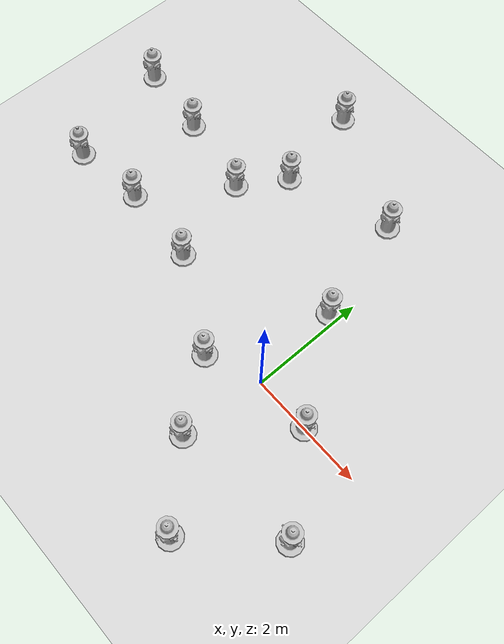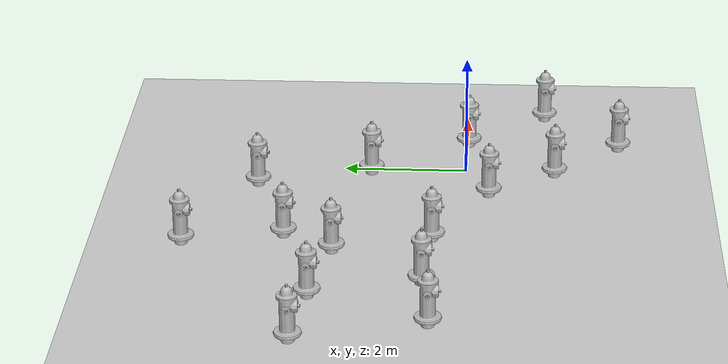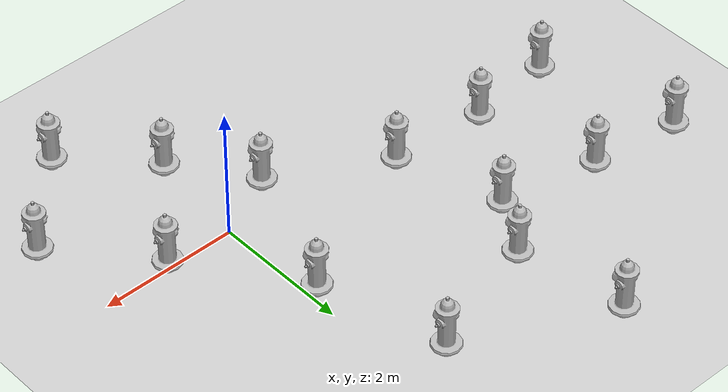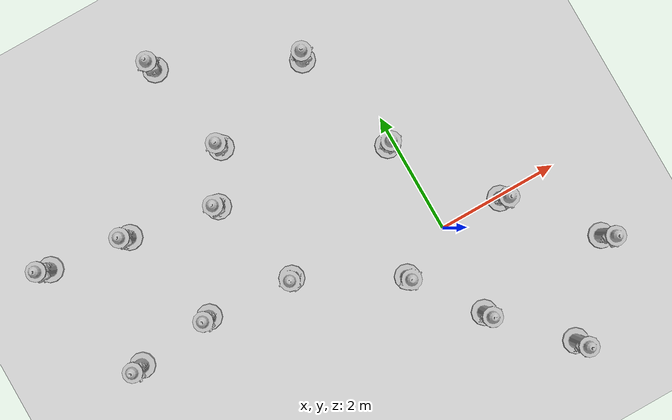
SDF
<sdf version="1.7">
 <world name="default">
  <light name="sun" type="directional">
   <pose>0 0 10 0 -0 0</pose>
   <diffuse>0.8 0.8 0.8 1</diffuse>
   <specular>0.2 0.2 0.2 1</specular>
   <attenuation>
    <range>1000</range>
    <constant>0.9</constant>
    <linear>0.01</linear>
    <quadratic>0.001</quadratic>
   </attenuation>
   <direction>-0.5 0.1 -0.9</direction>
   <spot><inner_angle>0</inner_angle><outer_angle>0</outer_angle><falloff>0</falloff></spot>
  </light>
  <model name="ground_plane">
   <static>1</static>
   <link name="link">
    <collision name="collision">
     <geometry><plane><normal>0 0 1</normal><size>100 100</size></plane></geometry>
     <surface>
      <contact><collide_bitmask>65535</collide_bitmask></contact>
      <friction><ode><mu>100</mu><mu2>50</mu2></ode></friction>
     </surface>
    </collision>
    <visual name="visual">
     <cast_shadows>0</cast_shadows>
     <geometry><plane><normal>0 0 1</normal><size>100 100</size></plane></geometry>
     <material>
      <script><uri>file://media/materials/scripts/gazebo.material</uri><name>Gazebo/Grey</name></script>
     </material>
    </visual>
   </link>
  </model>
  <gravity>0 0 -9.8</gravity>
  <magnetic_field>6e-06 2.3e-05 -4.2e-05</magnetic_field>
  <atmosphere type="adiabatic"/>
  <physics type="ode">
   <max_step_size>0.001</max_step_size>
   <real_time_factor>1</real_time_factor>
   <real_time_update_rate>1000</real_time_update_rate>
  </physics>
  <scene><ambient>0.4 0.4 0.4 1</ambient><background>0.7 0.7 0.7 1</background><shadows>1</shadows></scene>
  <audio><device>default</device></audio>
  <spherical_coordinates>
   <surface_model>EARTH_WGS84</surface_model>
   <latitude_deg>0</latitude_deg>
   <longitude_deg>0</longitude_deg>
   <elevation>0</elevation>
   <heading_deg>0</heading_deg>
  </spherical_coordinates>
  <model name="fire_hydrant">
   <static>1</static>
   <link name="link">
    <collision name="collision">
     <geometry><mesh><uri>model://fire_hydrant/meshes/fire_hydrant.dae</uri></mesh></geometry>
    </collision>
    <visual name="visual">
     <geometry><mesh><uri>model://fire_hydrant/meshes/fire_hydrant.dae</uri></mesh></geometry>
    </visual>
   </link>
   <pose>-0.881907 -0.382878 0 0 -0 0</pose>
  </model>
  <model name="fire_hydrant_0">
   <static>1</static>
   <link name="link">
    <collision name="collision">
     <geometry><mesh><uri>model://fire_hydrant/meshes/fire_hydrant.dae</uri></mesh></geometry>
    </collision>
    <visual name="visual">
     <geometry><mesh><uri>model://fire_hydrant/meshes/fire_hydrant.dae</uri></mesh></geometry>
    </visual>
   </link>
   <pose>-0.111705 -1.45915 0 0 -0 0</pose>
  </model>
  <model name="fire_hydrant_1">
   <static>1</static>
   <link name="link">
    <collision name="collision">
     <geometry><mesh><uri>model://fire_hydrant/meshes/fire_hydrant.dae</uri></mesh></geometry>
    </collision>
    <visual name="visual">
     <geometry><mesh><uri>model://fire_hydrant/meshes/fire_hydrant.dae</uri></mesh></geometry>
    </visual>
   </link>
   <pose>0.910929 -2.54495 0 0 -0 0</pose>
  </model>
  <model name="fire_hydrant_2">
   <static>1</static>
   <link name="link">
    <collision name="collision">
     <geometry><mesh><uri>model://fire_hydrant/meshes/fire_hydrant.dae</uri></mesh></geometry>
    </collision>
    <visual name="visual">
     <geometry><mesh><uri>model://fire_hydrant/meshes/fire_hydrant.dae</uri></mesh></geometry>
    </visual>
   </link>
   <pose>-2.4648 0.493981 0 0 -0 0</pose>
  </model>
  <model name="fire_hydrant_3">
   <static>1</static>
   <link name="link">
    <collision name="collision">
     <geometry><mesh><uri>model://fire_hydrant/meshes/fire_hydrant.dae</uri></mesh></geometry>
    </collision>
    <visual name="visual">
     <geometry><mesh><uri>model://fire_hydrant/meshes/fire_hydrant.dae</uri></mesh></geometry>
    </visual>
   </link>
   <pose>-3.88216 0.604142 0 0 -0 0</pose>
  </model>
  <model name="fire_hydrant_4">
   <static>1</static>
   <link name="link">
    <collision name="collision">
     <geometry><mesh><uri>model://fire_hydrant/meshes/fire_hydrant.dae</uri></mesh></geometry>
    </collision>
    <visual name="visual">
     <geometry><mesh><uri>model://fire_hydrant/meshes/fire_hydrant.dae</uri></mesh></geometry>
    </visual>
   </link>
   <pose>-4.3561 2.30307 0 0 -0 0</pose>
  </model>
  <model name="fire_hydrant_5">
   <static>1</static>
   <link name="link">
    <collision name="collision">
     <geometry><mesh><uri>model://fire_hydrant/meshes/fire_hydrant.dae</uri></mesh></geometry>
    </collision>
    <visual name="visual">
     <geometry><mesh><uri>model://fire_hydrant/meshes/fire_hydrant.dae</uri></mesh></geometry>
    </visual>
   </link>
   <pose>-2.9112 2.0353 0 0 -0 0</pose>
  </model>
  <model name="fire_hydrant_6">
   <static>1</static>
   <link name="link">
    <collision name="collision">
     <geometry><mesh><uri>model://fire_hydrant/meshes/fire_hydrant.dae</uri></mesh></geometry>
    </collision>
    <visual name="visual">
     <geometry><mesh><uri>model://fire_hydrant/meshes/fire_hydrant.dae</uri></mesh></geometry>
    </visual>
   </link>
   <pose>-2.41696 2.8246 0 0 -0 0</pose>
  </model>
  <model name="fire_hydrant_7">
   <static>1</static>
   <link name="link">
    <collision name="collision">
     <geometry><mesh><uri>model://fire_hydrant/meshes/fire_hydrant.dae</uri></mesh></geometry>
    </collision>
    <visual name="visual">
     <geometry><mesh><uri>model://fire_hydrant/meshes/fire_hydrant.dae</uri></mesh></geometry>
    </visual>
   </link>
   <pose>-2.7182 4.40434 0 0 -0 0</pose>
  </model>
  <model name="fire_hydrant_8">
   <static>1</static>
   <link name="link">
    <collision name="collision">
     <geometry><mesh><uri>model://fire_hydrant/meshes/fire_hydrant.dae</uri></mesh></geometry>
    </collision>
    <visual name="visual">
     <geometry><mesh><uri>model://fire_hydrant/meshes/fire_hydrant.dae</uri></mesh></geometry>
    </visual>
   </link>
   <pose>-0.625812 3.394 0 0 -0 0</pose>
  </model>
  <model name="fire_hydrant_9">
   <static>1</static>
   <link name="link">
    <collision name="collision">
     <geometry><mesh><uri>model://fire_hydrant/meshes/fire_hydrant.dae</uri></mesh></geometry>
    </collision>
    <visual name="visual">
     <geometry><mesh><uri>model://fire_hydrant/meshes/fire_hydrant.dae</uri></mesh></geometry>
    </visual>
   </link>
   <pose>-0.126826 1.55865 0 0 -0 0</pose>
  </model>
  <model name="fire_hydrant_10">
   <static>1</static>
   <link name="link">
    <collision name="collision">
     <geometry><mesh><uri>model://fire_hydrant/meshes/fire_hydrant.dae</uri></mesh></geometry>
    </collision>
    <visual name="visual">
     <geometry><mesh><uri>model://fire_hydrant/meshes/fire_hydrant.dae</uri></mesh></geometry>
    </visual>
   </link>
   <pose>0.991817 -0.031808 0 0 -0 0</pose>
  </model>
  <model name="fire_hydrant_11">
   <static>1</static>
   <link name="link">
    <collision name="collision">
     <geometry><mesh><uri>model://fire_hydrant/meshes/fire_hydrant.dae</uri></mesh></geometry>
    </collision>
    <visual name="visual">
     <geometry><mesh><uri>model://fire_hydrant/meshes/fire_hydrant.dae</uri></mesh></geometry>
    </visual>
   </link>
   <pose>-5.67804 2.47604 0 0 -0 0</pose>
  </model>
  <model name="fire_hydrant_12">
   <static>1</static>
   <link name="link">
    <collision name="collision">
     <geometry><mesh><uri>model://fire_hydrant/meshes/fire_hydrant.dae</uri></mesh></geometry>
    </collision>
    <visual name="visual">
     <geometry><mesh><uri>model://fire_hydrant/meshes/fire_hydrant.dae</uri></mesh></geometry>
    </visual>
   </link>
   <pose>-5.15763 0.463928 0 0 -0 0</pose>
  </model>
  <model name="fire_hydrant_13">
   <static>1</static>
   <link name="link">
    <collision name="collision">
     <geometry><mesh><uri>model://fire_hydrant/meshes/fire_hydrant.dae</uri></mesh></geometry>
    </collision>
    <visual name="visual">
     <geometry><mesh><uri>model://fire_hydrant/meshes/fire_hydrant.dae</uri></mesh></geometry>
    </visual>
   </link>
   <pose>2.07896 -1.31902 0 0 -0 0</pose>
  </model>
 </world>
</sdf>
